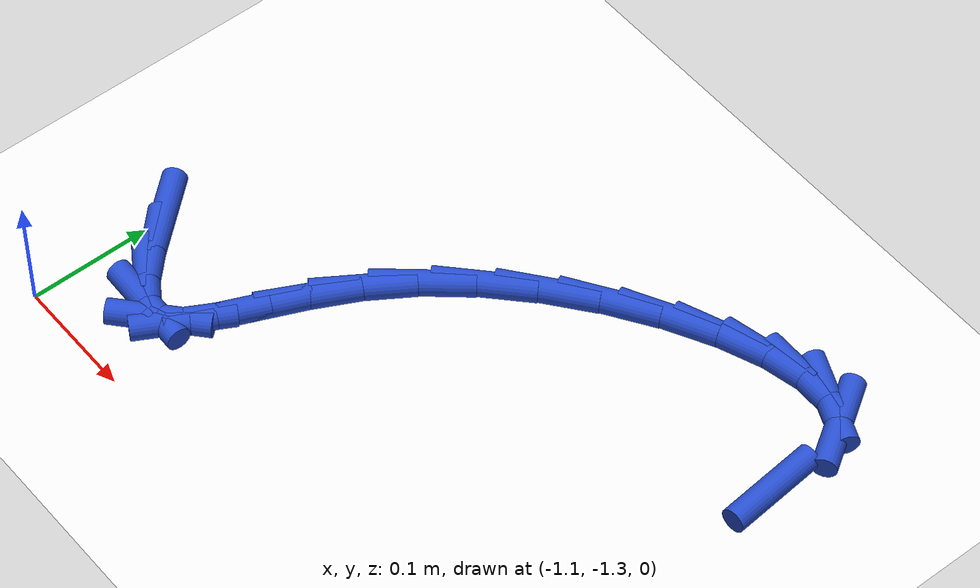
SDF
<sdf version="1.6">
 <world name="default">
  <model name="ground_plane">
   <static>1</static>
   <link name="link">
    <collision name="collision">
     <geometry><plane><normal>0 0 1</normal><size>100 100</size></plane></geometry>
     <surface><friction><ode><mu>100</mu><mu2>50</mu2></ode></friction></surface>
    </collision>
    <visual name="visual">
     <cast_shadows>0</cast_shadows>
     <geometry><plane><normal>0 0 1</normal><size>100 100</size></plane></geometry>
     <material>
      <script><uri>file://media/materials/scripts/gazebo.material</uri><name>Gazebo/WhiteGlow</name></script>
     </material>
    </visual>
   </link>
  </model>
  <model name="line">
   <link name="link_189">
    <pose>-1.0949903325610841 -1.1863279676117662 0.01 0 1.57 -0.8560399723841927</pose>
    <collision name="collision">
     <geometry><cylinder><radius>0.01</radius><length>0.08</length></cylinder></geometry>
    </collision>
    <visual name="visual">
     <material>
      <script><name>Gazebo/Blue</name><uri>file://media/materials/scripts/gazebo.material</uri></script>
     </material>
     <geometry><cylinder><radius>0.01</radius><length>0.08</length></cylinder></geometry>
    </visual>
   </link>
   <link name="link_190">
    <pose>-1.072871165461245 -1.2118157834557421 0.01 0 1.57 -0.781123556894008</pose>
    <collision name="collision">
     <geometry><cylinder><radius>0.01</radius><length>0.08</length></cylinder></geometry>
    </collision>
    <visual name="visual">
     <material>
      <script><name>Gazebo/Blue</name><uri>file://media/materials/scripts/gazebo.material</uri></script>
     </material>
     <geometry><cylinder><radius>0.01</radius><length>0.08</length></cylinder></geometry>
    </visual>
   </link>
   <link name="link_191">
    <pose>-1.0527667011712656 -1.2317491009409478 0.01 0 1.57 -0.5785662873734954</pose>
    <collision name="collision">
     <geometry><cylinder><radius>0.01</radius><length>0.08</length></cylinder></geometry>
    </collision>
    <visual name="visual">
     <material>
      <script><name>Gazebo/Blue</name><uri>file://media/materials/scripts/gazebo.material</uri></script>
     </material>
     <geometry><cylinder><radius>0.01</radius><length>0.08</length></cylinder></geometry>
    </visual>
   </link>
   <link name="link_192">
    <pose>-1.0349814255644063 -1.2433650422478795 0.01 0 1.57 -0.03642991901377703</pose>
    <collision name="collision">
     <geometry><cylinder><radius>0.01</radius><length>0.08</length></cylinder></geometry>
    </collision>
    <visual name="visual">
     <material>
      <script><name>Gazebo/Blue</name><uri>file://media/materials/scripts/gazebo.material</uri></script>
     </material>
     <geometry><cylinder><radius>0.01</radius><length>0.08</length></cylinder></geometry>
    </visual>
   </link>
   <link name="link_193">
    <pose>-1.0198137558981233 -1.2439178437952534 0.01 0 1.57 0.7311863106995666</pose>
    <collision name="collision">
     <geometry><cylinder><radius>0.01</radius><length>0.08</length></cylinder></geometry>
    </collision>
    <visual name="visual">
     <material>
      <script><name>Gazebo/Blue</name><uri>file://media/materials/scripts/gazebo.material</uri></script>
     </material>
     <geometry><cylinder><radius>0.01</radius><length>0.08</length></cylinder></geometry>
    </visual>
   </link>
   <link name="link_194">
    <pose>-1.0069525916432827 -1.2323806566499154 0.01 0 1.57 1.0619612682668595</pose>
    <collision name="collision">
     <geometry><cylinder><radius>0.01</radius><length>0.08</length></cylinder></geometry>
    </collision>
    <visual name="visual">
     <material>
      <script><name>Gazebo/Blue</name><uri>file://media/materials/scripts/gazebo.material</uri></script>
     </material>
     <geometry><cylinder><radius>0.01</radius><length>0.08</length></cylinder></geometry>
    </visual>
   </link>
   <link name="link_195">
    <pose>-0.9949648601121996 -1.210890730483471 0.01 0 1.57 1.1585067059004075</pose>
    <collision name="collision">
     <geometry><cylinder><radius>0.01</radius><length>0.08</length></cylinder></geometry>
    </collision>
    <visual name="visual">
     <material>
      <script><name>Gazebo/Blue</name><uri>file://media/materials/scripts/gazebo.material</uri></script>
     </material>
     <geometry><cylinder><radius>0.01</radius><length>0.08</length></cylinder></geometry>
    </visual>
   </link>
   <link name="link_196">
    <pose>-0.9822968071899443 -1.1819256513409906 0.01 0 1.57 1.157312064657564</pose>
    <collision name="collision">
     <geometry><cylinder><radius>0.01</radius><length>0.08</length></cylinder></geometry>
    </collision>
    <visual name="visual">
     <material>
      <script><name>Gazebo/Blue</name><uri>file://media/materials/scripts/gazebo.material</uri></script>
     </material>
     <geometry><cylinder><radius>0.01</radius><length>0.08</length></cylinder></geometry>
    </visual>
   </link>
   <link name="link_197">
    <pose>-0.9673946787615851 -1.1479630052675436 0.01 0 1.57 1.0973591983965256</pose>
    <collision name="collision">
     <geometry><cylinder><radius>0.01</radius><length>0.08</length></cylinder></geometry>
    </collision>
    <visual name="visual">
     <material>
      <script><name>Gazebo/Blue</name><uri>file://media/materials/scripts/gazebo.material</uri></script>
     </material>
     <geometry><cylinder><radius>0.01</radius><length>0.08</length></cylinder></geometry>
    </visual>
   </link>
   <link name="link_198">
    <pose>-0.9487047207121924 -1.1114803783081995 0.01 0 1.57 0.9894775031710121</pose>
    <collision name="collision">
     <geometry><cylinder><radius>0.01</radius><length>0.08</length></cylinder></geometry>
    </collision>
    <visual name="visual">
     <material>
      <script><name>Gazebo/Blue</name><uri>file://media/materials/scripts/gazebo.material</uri></script>
     </material>
     <geometry><cylinder><radius>0.01</radius><length>0.08</length></cylinder></geometry>
    </visual>
   </link>
   <link name="link_199">
    <pose>-0.9246972607550538 -1.074942402263118 0.01 0 1.57 0.8648999982082993</pose>
    <collision name="collision">
     <geometry><cylinder><radius>0.01</radius><length>0.08</length></cylinder></geometry>
    </collision>
    <visual name="visual">
     <material>
      <script><name>Gazebo/Blue</name><uri>file://media/materials/scripts/gazebo.material</uri></script>
     </material>
     <geometry><cylinder><radius>0.01</radius><length>0.08</length></cylinder></geometry>
    </visual>
   </link>
   <link name="link_200">
    <pose>-0.8950511736842628 -1.0401635998655887 0.01 0 1.57 0.7594747927967579</pose>
    <collision name="collision">
     <geometry><cylinder><radius>0.01</radius><length>0.08</length></cylinder></geometry>
    </collision>
    <visual name="visual">
     <material>
      <script><name>Gazebo/Blue</name><uri>file://media/materials/scripts/gazebo.material</uri></script>
     </material>
     <geometry><cylinder><radius>0.01</radius><length>0.08</length></cylinder></geometry>
    </visual>
   </link>
   <link name="link_201">
    <pose>-0.8611940083914666 -1.0080178363405035 0.01 0 1.57 0.66648987342158</pose>
    <collision name="collision">
     <geometry><cylinder><radius>0.01</radius><length>0.08</length></cylinder></geometry>
    </collision>
    <visual name="visual">
     <material>
      <script><name>Gazebo/Blue</name><uri>file://media/materials/scripts/gazebo.material</uri></script>
     </material>
     <geometry><cylinder><radius>0.01</radius><length>0.08</length></cylinder></geometry>
    </visual>
   </link>
   <link name="link_202">
    <pose>-0.8246900642544845 -0.9793054152515047 0.01 0 1.57 0.5772649747136467</pose>
    <collision name="collision">
     <geometry><cylinder><radius>0.01</radius><length>0.08</length></cylinder></geometry>
    </collision>
    <visual name="visual">
     <material>
      <script><name>Gazebo/Blue</name><uri>file://media/materials/scripts/gazebo.material</uri></script>
     </material>
     <geometry><cylinder><radius>0.01</radius><length>0.08</length></cylinder></geometry>
    </visual>
   </link>
   <link name="link_203">
    <pose>-0.7871036406511357 -0.9548266401622357 0.01 0 1.57 0.4827053173739305</pose>
    <collision name="collision">
     <geometry><cylinder><radius>0.01</radius><length>0.08</length></cylinder></geometry>
    </collision>
    <visual name="visual">
     <material>
      <script><name>Gazebo/Blue</name><uri>file://media/materials/scripts/gazebo.material</uri></script>
     </material>
     <geometry><cylinder><radius>0.01</radius><length>0.08</length></cylinder></geometry>
    </visual>
   </link>
   <link name="link_204">
    <pose>-0.7499990369592406 -0.9353818146363412 0.01 0 1.57 0.370314292845121</pose>
    <collision name="collision">
     <geometry><cylinder><radius>0.01</radius><length>0.08</length></cylinder></geometry>
    </collision>
    <visual name="visual">
     <material>
      <script><name>Gazebo/Blue</name><uri>file://media/materials/scripts/gazebo.material</uri></script>
     </material>
     <geometry><cylinder><radius>0.01</radius><length>0.08</length></cylinder></geometry>
    </visual>
   </link>
   <link name="link_205">
    <pose>-0.7149405525566184 -0.9217712422374631 0.01 0 1.57 0.2182918553342167</pose>
    <collision name="collision">
     <geometry><cylinder><radius>0.01</radius><length>0.08</length></cylinder></geometry>
    </collision>
    <visual name="visual">
     <material>
      <script><name>Gazebo/Blue</name><uri>file://media/materials/scripts/gazebo.material</uri></script>
     </material>
     <geometry><cylinder><radius>0.01</radius><length>0.08</length></cylinder></geometry>
    </visual>
   </link>
   <link name="link_206">
    <pose>-0.6834924868210887 -0.9147952265292453 0.01 0 1.57 -0.01746248368406219</pose>
    <collision name="collision">
     <geometry><cylinder><radius>0.01</radius><length>0.08</length></cylinder></geometry>
    </collision>
    <visual name="visual">
     <material>
      <script><name>Gazebo/Blue</name><uri>file://media/materials/scripts/gazebo.material</uri></script>
     </material>
     <geometry><cylinder><radius>0.01</radius><length>0.08</length></cylinder></geometry>
    </visual>
   </link>
   <link name="link_207">
    <pose>-0.6572191391304709 -0.9152540710753307 0.01 0 1.57 -0.41874076803425453</pose>
    <collision name="collision">
     <geometry><cylinder><radius>0.01</radius><length>0.08</length></cylinder></geometry>
    </collision>
    <visual name="visual">
     <material>
      <script><name>Gazebo/Blue</name><uri>file://media/materials/scripts/gazebo.material</uri></script>
     </material>
     <geometry><cylinder><radius>0.01</radius><length>0.08</length></cylinder></geometry>
    </visual>
   </link>
   <link name="link_208">
    <pose>-0.6376848088625849 -0.9239480794393634 0.01 0 1.57 -1.0061325183242784</pose>
    <collision name="collision">
     <geometry><cylinder><radius>0.01</radius><length>0.08</length></cylinder></geometry>
    </collision>
    <visual name="visual">
     <material>
      <script><name>Gazebo/Blue</name><uri>file://media/materials/scripts/gazebo.material</uri></script>
     </material>
     <geometry><cylinder><radius>0.01</radius><length>0.08</length></cylinder></geometry>
    </visual>
   </link>
   <link name="link_211">
    <pose>-0.6268567387266836 -0.9980198667223552 0.01 0 1.57 -1.4776293352071888</pose>
    <collision name="collision">
     <geometry><cylinder><radius>0.01</radius><length>0.08</length></cylinder></geometry>
    </collision>
    <visual name="visual">
     <material>
      <script><name>Gazebo/Blue</name><uri>file://media/materials/scripts/gazebo.material</uri></script>
     </material>
     <geometry><cylinder><radius>0.01</radius><length>0.08</length></cylinder></geometry>
    </visual>
   </link>
  </model>
 </world>
</sdf>
